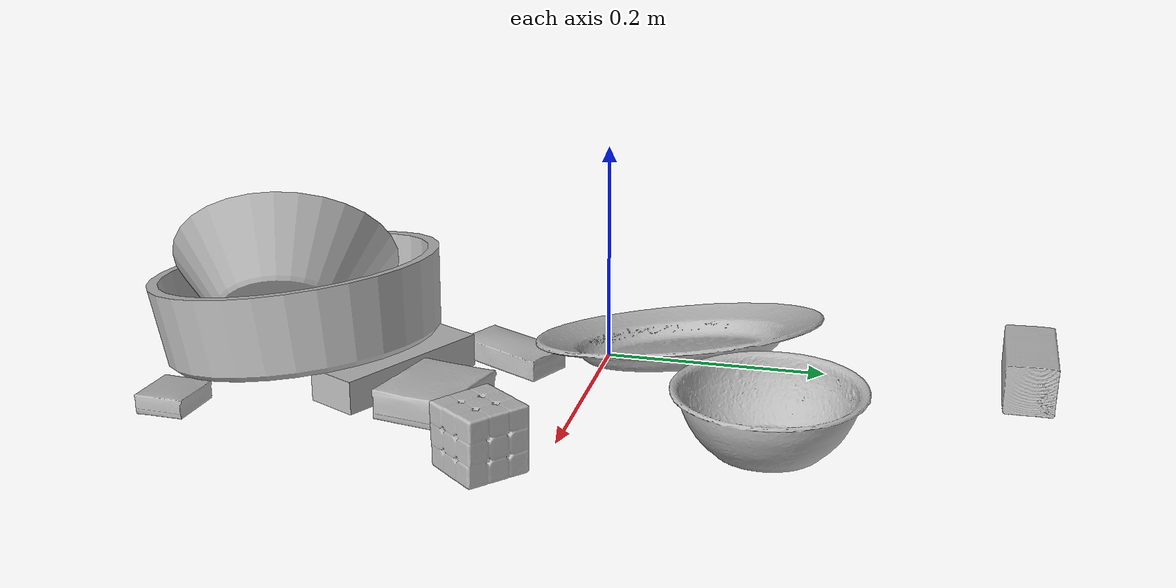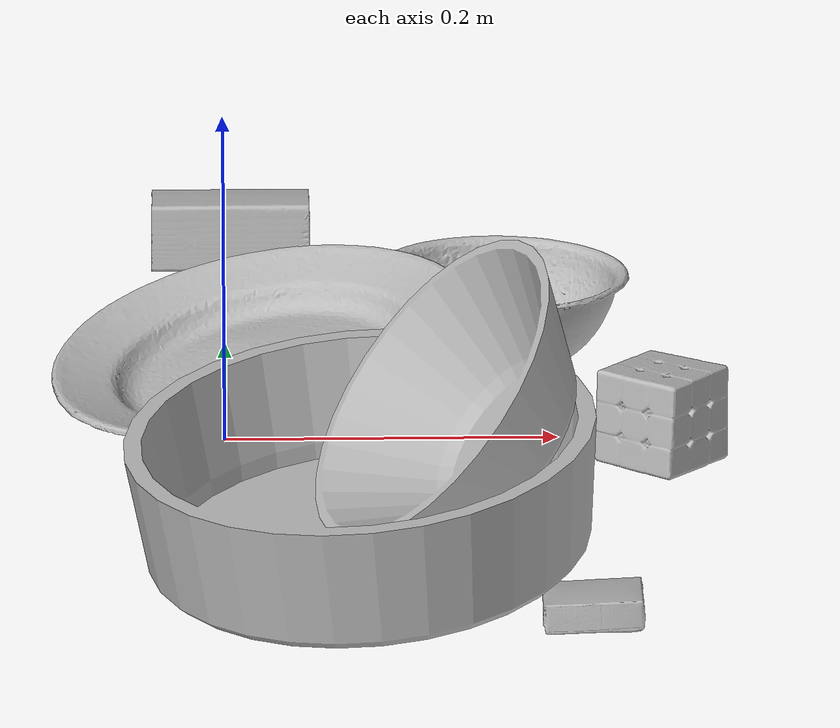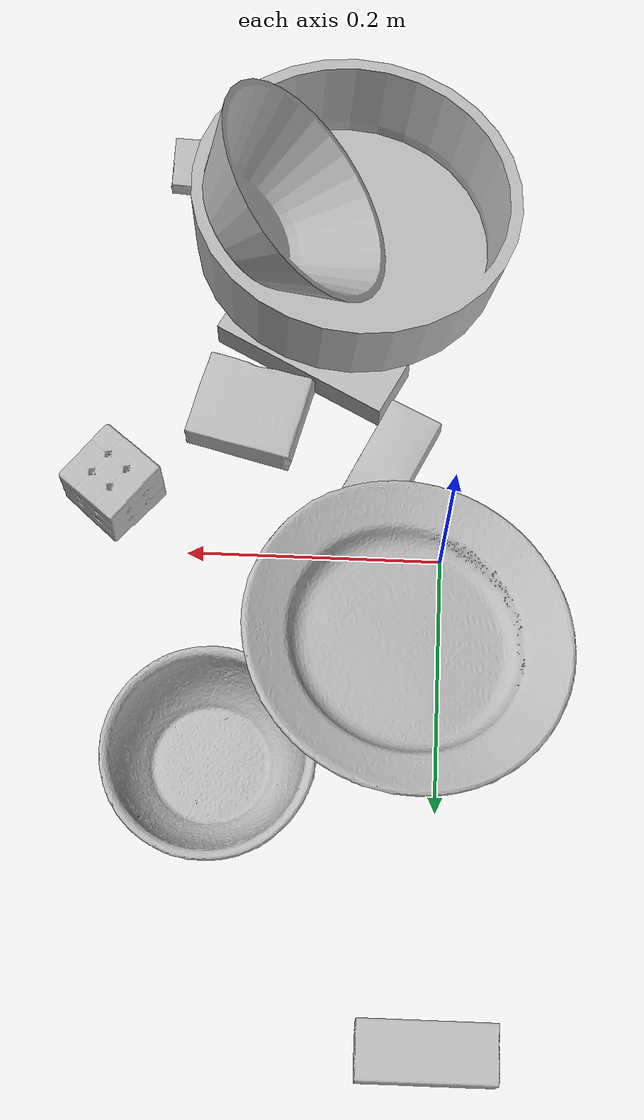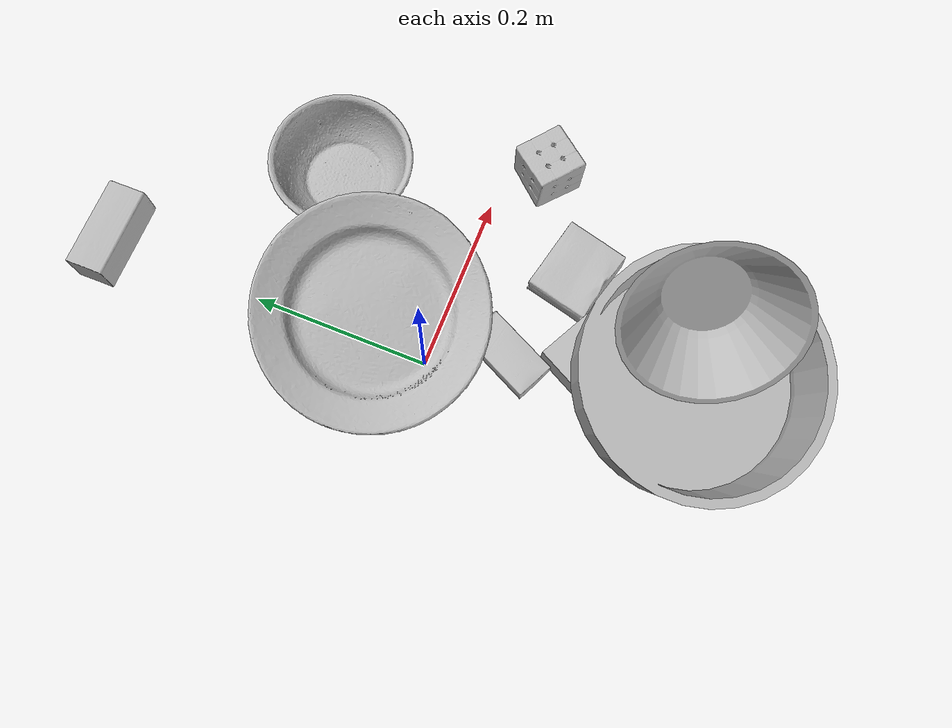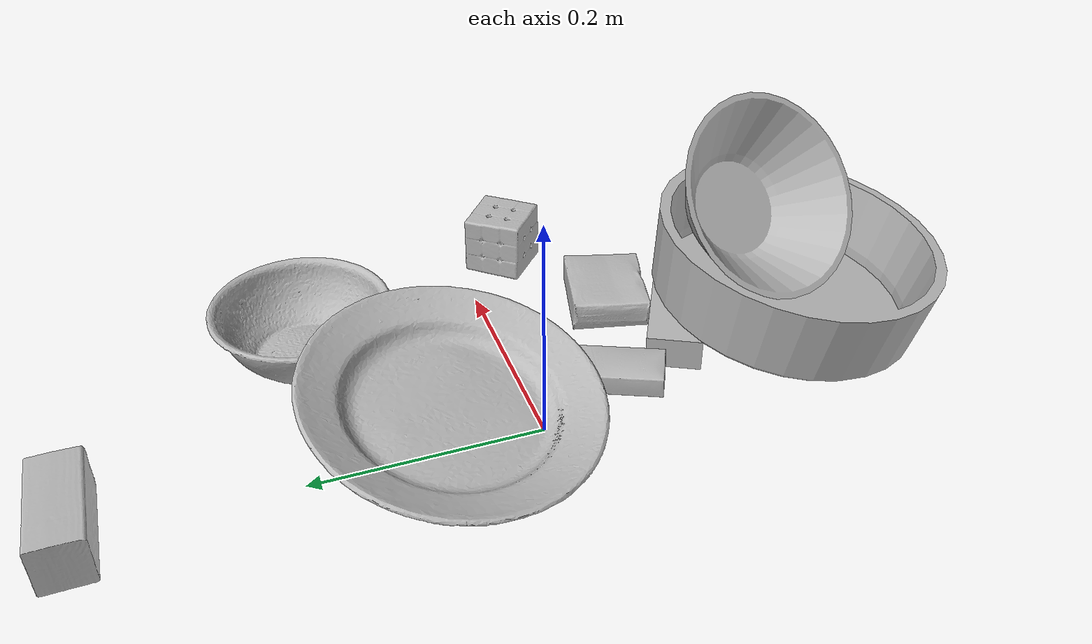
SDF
<sdf version="1.4">
  <world name="default">
    <light name="light1" type="point">
      <pose>0 0 1 0 0 0</pose>
      <diffuse>3 3 3 1</diffuse>
      <specular>3 3 3 1</specular>
    </light>
    <light name="light2" type="point">
      <pose>0 0.5 2 0 0 0</pose>
      <diffuse>1 1 1 1</diffuse>
      <specular>1 1 1 1</specular>
    </light>
    <light name="light3" type="point">
      <pose>0 0.5 2 0 0 0</pose>
      <diffuse>3 3 3 1</diffuse>
      <specular>3 3 3 1</specular>
    </light>
    <scene>
      <ambient>0.7 0.7 0.7</ambient>
    </scene>
    <model name="box1">
      <link name="link_box1">
        <collision name="default">
          <geometry>
            <mesh>
              <uri>model://gelatin_box/collision_meshes/collision.obj</uri>
              <scale>1.0 1.0 1.0</scale>
            </mesh>
          </geometry>
          <surface>
            <friction>
              <ode>
                <mu>0.5</mu>
                <mu2>0.5</mu2>
              </ode>
            </friction>
          <contact>
        <ode>
            <max_vel>0</max_vel>
            <min_depth>0.0001</min_depth>
            <kp>1e8</kp>
        </ode>
    </contact></surface>
        </collision>
        <visual name="default">
          <geometry>
            <mesh>
              <uri>model://gelatin_box/visual_meshes/visual.dae</uri>
              <scale>1.0 1.0 1.0</scale>
            </mesh>
          </geometry>
        </visual>
        <inertial>
          <mass>0.1979130208492279</mass>
          <pose>0.0004319618456065655 0.00011156871914863586 -0.0003640321083366871 -0.0010503722055948273 -0.004755818222760974 0.016440559471883928</pose>
          <inertia>
            <ixx>0.00013971045</ixx>
            <iyy>9.9794444e-05</iyy>
            <izz>0.00021267045</izz>
            <ixy>0</ixy>
            <ixz>0</ixz>
            <iyz>0</iyz>
          </inertia>
        </inertial>
      </link>
      <pose>0.15574778616428375 -0.11760050803422928 0.014667247422039509 0.014186131011741283 0.01686472045037803 -1.8219361793647342</pose>
    </model>
    <model name="box11">
      <link name="link_box11">
        <collision name="default">
          <geometry>
            <mesh>
              <uri>model://sugar_box/collision_meshes/collision.obj</uri>
              <scale>0.5 0.5 0.5</scale>
            </mesh>
          </geometry>
          <surface>
            <friction>
              <ode>
                <mu>0.5</mu>
                <mu2>0.5</mu2>
              </ode>
            </friction>
          <contact>
        <ode>
            <max_vel>0</max_vel>
            <min_depth>0.0001</min_depth>
            <kp>1e8</kp>
        </ode>
    </contact></surface>
        </collision>
        <visual name="default">
          <geometry>
            <mesh>
              <uri>model://sugar_box/visual_meshes/visual.dae</uri>
              <scale>0.5 0.5 0.5</scale>
            </mesh>
          </geometry>
        </visual>
        <inertial>
          <mass>0.10992158949375153</mass>
          <pose>0.0005171863595023751 1.924554817378521e-05 -0.00018182402709499002 -0.00040462650409139634 0.0010506636387973133 0.002615378555960767</pose>
          <inertia>
            <ixx>2.2896586e-05</ixx>
            <iyy>7.400649e-05</iyy>
            <izz>8.8594585e-05</izz>
            <ixy>0</ixy>
            <ixz>0</ixz>
            <iyz>0</iyz>
          </inertia>
        </inertial>
      </link>
      <pose>0.041250765323638916 -0.08037696778774261 0.01139930821955204 0.0007753020938572256 -0.023433274642348182 -2.0321291681784737</pose>
    </model>
    <model name="box2">
      <link name="link_box2">
        <collision name="default">
          <geometry>
            <mesh>
              <uri>model://jenga/collision_meshes/collision.obj</uri>
              <scale>1.0 1.0 1.0</scale>
            </mesh>
          </geometry>
          <surface>
            <friction>
              <ode>
                <mu>0.5</mu>
                <mu2>0.5</mu2>
              </ode>
            </friction>
          <contact>
        <ode>
            <max_vel>0</max_vel>
            <min_depth>0.0001</min_depth>
            <kp>1e8</kp>
        </ode>
    </contact></surface>
        </collision>
        <visual name="default">
          <geometry>
            <mesh>
              <uri>model://jenga/visual_meshes/visual.dae</uri>
              <scale>1.0 1.0 1.0</scale>
            </mesh>
          </geometry>
        </visual>
        <inertial>
          <mass>0.12651896476745605</mass>
          <pose>-2.502855807051674e-07 -0.00010250010382151231 -4.0923401684267446e-05 0.0 -7.34215461761844e-07 0.0</pose>
          <inertia>
            <ixx>3.5010868e-05</ixx>
            <iyy>0.00023723267</iyy>
            <izz>0.00025326604</izz>
            <ixy>0</ixy>
            <ixz>0</ixz>
            <iyz>0</iyz>
          </inertia>
        </inertial>
      </link>
      <pose>0.10716930776834488 -0.17147129774093628 0.015035741031169891 -0.0011995736465941506 0.00010556700245282862 2.6610372898986543</pose>
    </model>
    <model name="box21">
      <link name="link_box21">
        <collision name="default">
          <geometry>
            <mesh>
              <uri>model://wood_block/collision_meshes/collision.obj</uri>
              <scale>0.5 0.5 0.5</scale>
            </mesh>
          </geometry>
          <surface>
            <friction>
              <ode>
                <mu>0.5</mu>
                <mu2>0.5</mu2>
              </ode>
            </friction>
          <contact>
        <ode>
            <max_vel>0</max_vel>
            <min_depth>0.0001</min_depth>
            <kp>1e8</kp>
        </ode>
    </contact></surface>
        </collision>
        <visual name="default">
          <geometry>
            <mesh>
              <uri>model://wood_block/visual_meshes/visual.dae</uri>
              <scale>0.5 0.5 0.5</scale>
            </mesh>
          </geometry>
        </visual>
        <inertial>
          <mass>0.17952100932598114</mass>
          <pose>-2.906657982748584e-06 -0.00028540476341731846 0.00013204291462898254 -0.052208472466385096 -0.005192695659959234 -0.0068613786899108485</pose>
          <inertia>
            <ixx>6.0056565e-05</ixx>
            <iyy>0.0001897187</iyy>
            <izz>0.00018900905</izz>
            <ixy>0</ixy>
            <ixz>0</ixz>
            <iyz>0</iyz>
          </inertia>
        </inertial>
      </link>
      <pose>0.004125113599002361 0.37794890999794006 0.022629262879490852 -0.005208464522091611 0.005718614388909993 0.0049837481607165335</pose>
    </model>
    <model name="box3">
      <link name="link_box3">
        <collision name="default">
          <geometry>
            <mesh>
              <uri>model://rubiks_cube/collision_meshes/collision.obj</uri>
              <scale>1.0 1.0 1.0</scale>
            </mesh>
          </geometry>
          <surface>
            <friction>
              <ode>
                <mu>0.5</mu>
                <mu2>0.5</mu2>
              </ode>
            </friction>
          <contact>
        <ode>
            <max_vel>0</max_vel>
            <min_depth>0.0001</min_depth>
            <kp>1e8</kp>
        </ode>
    </contact></surface>
        </collision>
        <visual name="default">
          <geometry>
            <mesh>
              <uri>model://rubiks_cube/visual_meshes/visual.dae</uri>
              <scale>1.0 1.0 1.0</scale>
            </mesh>
          </geometry>
        </visual>
        <inertial>
          <mass>0.2539031207561493</mass>
          <pose>2.6721041649580002e-05 5.2569666877388954e-05 -7.264316082000732e-06 -0.05467208428881645 -0.09814040742269707 -0.034455380154792534</pose>
          <inertia>
            <ixx>0.00014029852</ixx>
            <iyy>0.00013964424</iyy>
            <izz>0.00014146113</izz>
            <ixy>0</ixy>
            <ixz>0</ixz>
            <iyz>0</iyz>
          </inertia>
        </inertial>
      </link>
      <pose>0.2595219910144806 -0.046201735734939575 0.028678933158516884 -5.242463360929103e-06 -2.2011141529331644e-06 0.8862598421019077</pose>
    </model>
    <model name="box31">
      <link name="link_box31">
        <collision name="default">
          <geometry>
            <mesh>
              <uri>model://pudding_box/collision_meshes/collision.obj</uri>
              <scale>0.5 0.5 0.5</scale>
            </mesh>
          </geometry>
          <surface>
            <friction>
              <ode>
                <mu>0.5</mu>
                <mu2>0.5</mu2>
              </ode>
            </friction>
          <contact>
        <ode>
            <max_vel>0</max_vel>
            <min_depth>0.0001</min_depth>
            <kp>1e8</kp>
        </ode>
    </contact></surface>
        </collision>
        <visual name="default">
          <geometry>
            <mesh>
              <uri>model://pudding_box/visual_meshes/visual.dae</uri>
              <scale>0.5 0.5 0.5</scale>
            </mesh>
          </geometry>
        </visual>
        <inertial>
          <mass>0.030597222968935966</mass>
          <pose>0.00024474109522998333 0.00040339428232982755 -0.00025944135268218815 0.005213101792545572 -0.006603798718575614 0.020079825159656634</pose>
          <inertia>
            <ixx>8.6471455e-06</ixx>
            <iyy>5.8178607e-06</iyy>
            <izz>1.2769769e-05</izz>
            <ixy>0</ixy>
            <ixz>0</ixz>
            <iyz>0</iyz>
          </inertia>
        </inertial>
      </link>
      <pose>0.20371855795383453 -0.3380013406276703 0.010015705600380898 0.036792987821830554 0.000390718673242586 -1.5985959984346758</pose>
    </model>
    <model name="plate1">
      <link name="link_plate1">
        <collision name="default">
          <geometry>
            <mesh>
              <uri>model://pan_tefal/collision_meshes/collision.obj</uri>
              <scale>1.0 1.0 1.0</scale>
            </mesh>
          </geometry>
          <surface>
            <friction>
              <ode>
                <mu>0.5</mu>
                <mu2>0.5</mu2>
              </ode>
            </friction>
          <contact>
        <ode>
            <max_vel>0</max_vel>
            <min_depth>0.0001</min_depth>
            <kp>1e8</kp>
        </ode>
    </contact></surface>
        </collision>
        <visual name="default">
          <geometry>
            <mesh>
              <uri>model://pan_tefal/visual_meshes/visual.dae</uri>
              <scale>1.0 1.0 1.0</scale>
            </mesh>
          </geometry>
        </visual>
        <inertial>
          <mass>1.6321053504943848</mass>
          <pose>-0.00018001697026193142 3.279276279499754e-05 -0.00851493887603283 0.0008190355512640809 -0.00033013448733331557 -0.33186498661790637</pose>
          <inertia>
            <ixx>0.011266344</ixx>
            <iyy>0.011338978</iyy>
            <izz>0.02073917</izz>
            <ixy>0</ixy>
            <ixz>0</ixz>
            <iyz>0</iyz>
          </inertia>
        </inertial>
      </link>
      <pose>0.07863280922174454 -0.27110037207603455 0.056657131761312485 0.15646050542910384 0.025375894187300577 -0.6989980686321257</pose>
    </model>
    <model name="bowl1">
      <link name="link_bowl1">
        <collision name="default">
          <geometry>
            <mesh>
              <uri>model://bowl/collision_meshes/collision.obj</uri>
              <scale>1.0 1.0 1.0</scale>
            </mesh>
          </geometry>
          <surface>
            <friction>
              <ode>
                <mu>0.5</mu>
                <mu2>0.5</mu2>
              </ode>
            </friction>
          <contact>
        <ode>
            <max_vel>0</max_vel>
            <min_depth>0.0001</min_depth>
            <kp>1e8</kp>
        </ode>
    </contact></surface>
        </collision>
        <visual name="default">
          <geometry>
            <mesh>
              <uri>model://bowl/visual_meshes/visual.dae</uri>
              <scale>1.0 1.0 1.0</scale>
            </mesh>
          </geometry>
        </visual>
        <inertial>
          <mass>0.08853479474782944</mass>
          <pose>0.0002044534485321492 -0.0010302085429430008 -0.0008042657864280045 -0.015764086220495594 0.014546762208611713 0.7140398935341641</pose>
          <inertia>
            <ixx>0.00020337135</ixx>
            <iyy>0.00019882726</iyy>
            <izz>0.00034214073</izz>
            <ixy>0</ixy>
            <ixz>0</ixz>
            <iyz>0</iyz>
          </inertia>
        </inertial>
      </link>
      <pose>0.1710643321275711 0.17009945213794708 0.02778000943362713 2.9725819397743315e-07 3.9147521627054944e-07 -2.506351735751551</pose>
    </model>
    <model name="plate2">
      <link name="link_plate2">
        <collision name="default">
          <geometry>
            <mesh>
              <uri>model://plate/collision_meshes/collision.obj</uri>
              <scale>1.0 1.0 1.0</scale>
            </mesh>
          </geometry>
          <surface>
            <friction>
              <ode>
                <mu>0.5</mu>
                <mu2>0.5</mu2>
              </ode>
            </friction>
          <contact>
        <ode>
            <max_vel>0</max_vel>
            <min_depth>0.0001</min_depth>
            <kp>1e8</kp>
        </ode>
    </contact></surface>
        </collision>
        <visual name="default">
          <geometry>
            <mesh>
              <uri>model://plate/visual_meshes/visual.dae</uri>
              <scale>1.0 1.0 1.0</scale>
            </mesh>
          </geometry>
        </visual>
        <inertial>
          <mass>0.10531359910964966</mass>
          <pose>-0.0006044624024070799 0.00027825951110571623 -0.001056199660524726 0.0022187923451504944 -0.0032254757952566134 0.45260828030698763</pose>
          <inertia>
            <ixx>0.00049265905</ixx>
            <iyy>0.00048794702</iyy>
            <izz>0.0009635677</izz>
            <ixy>0</ixy>
            <ixz>0</ixz>
            <iyz>0</iyz>
          </inertia>
        </inertial>
      </link>
      <pose>0.024824101477861404 0.0710638165473938 0.030997732654213905 -0.22757323102664817 -0.010014834718725706 2.1660643271567985</pose>
    </model>
    <model name="bowl2">
      <link name="link_bowl2">
        <collision name="default">
          <geometry>
            <mesh>
              <uri>model://bowl_a/collision_meshes/collision.obj</uri>
              <scale>1.0 1.0 1.0</scale>
            </mesh>
          </geometry>
          <surface>
            <friction>
              <ode>
                <mu>0.5</mu>
                <mu2>0.5</mu2>
              </ode>
            </friction>
          <contact>
        <ode>
            <max_vel>0</max_vel>
            <min_depth>0.0001</min_depth>
            <kp>1e8</kp>
        </ode>
    </contact></surface>
        </collision>
        <visual name="default">
          <geometry>
            <mesh>
              <uri>model://bowl_a/visual_meshes/visual.dae</uri>
              <scale>1.0 1.0 1.0</scale>
            </mesh>
          </geometry>
        </visual>
        <inertial>
          <mass>0.4180941581726074</mass>
          <pose>0.000278673687716946 4.731199442176148e-05 -0.0013765294570475817 -0.0009805326545729344 -0.001093820496942545 -0.19124076645491772</pose>
          <inertia>
            <ixx>0.0011903334</ixx>
            <iyy>0.0011976411</iyy>
            <izz>0.0021170534</izz>
            <ixy>0</ixy>
            <ixz>0</ixz>
            <iyz>0</iyz>
          </inertia>
        </inertial>
      </link>
      <pose>0.13834522664546967 -0.25779926776885986 0.09458994120359421 -0.8850552755550292 -0.24457291784035545 1.6781857080587472</pose>
    </model>
  <physics type="ode">
      <max_contacts>50</max_contacts>
      <ode>
        <solver>
          <type>quick</type>
          <iters>75</iters>
        </solver>
        <constraints>
          <contact_max_correcting_vel>0</contact_max_correcting_vel>
          <contact_surface_layer>0</contact_surface_layer>
        </constraints>
      </ode>
    </physics></world>
</sdf>
